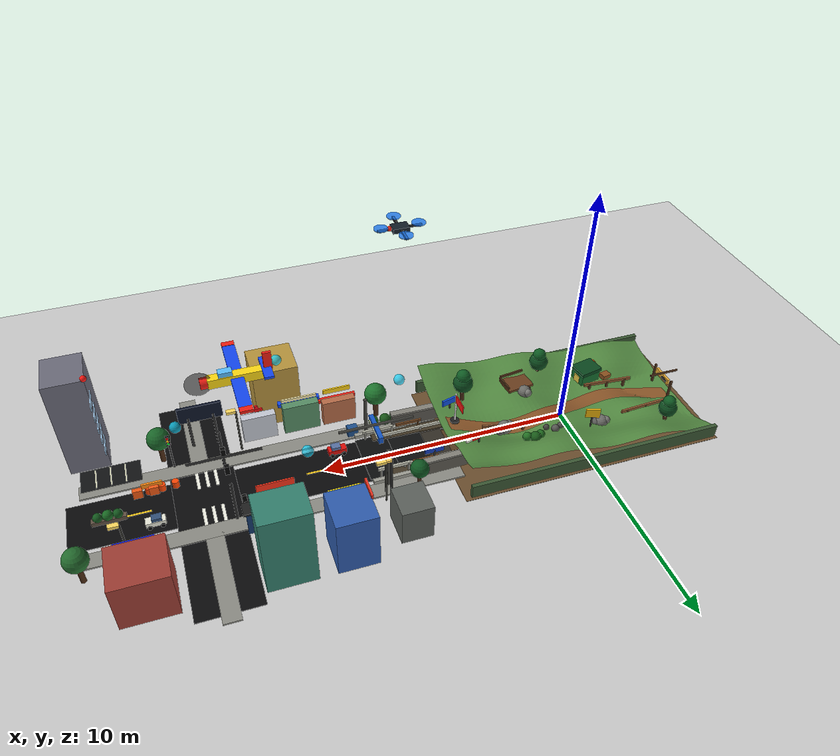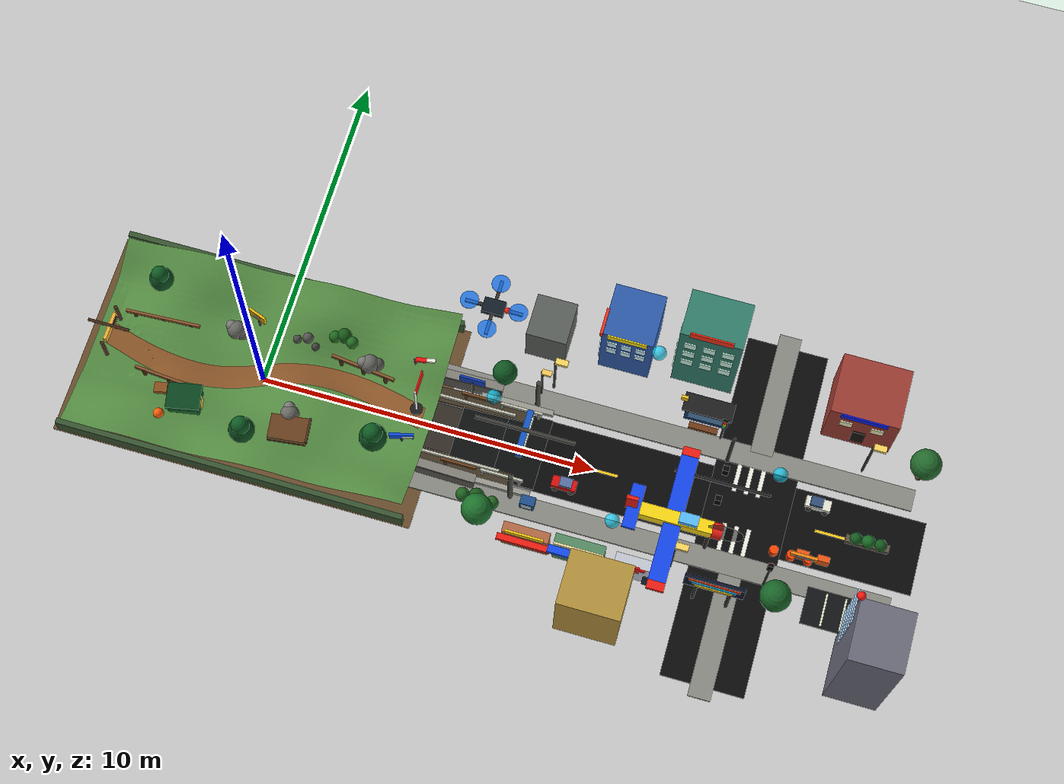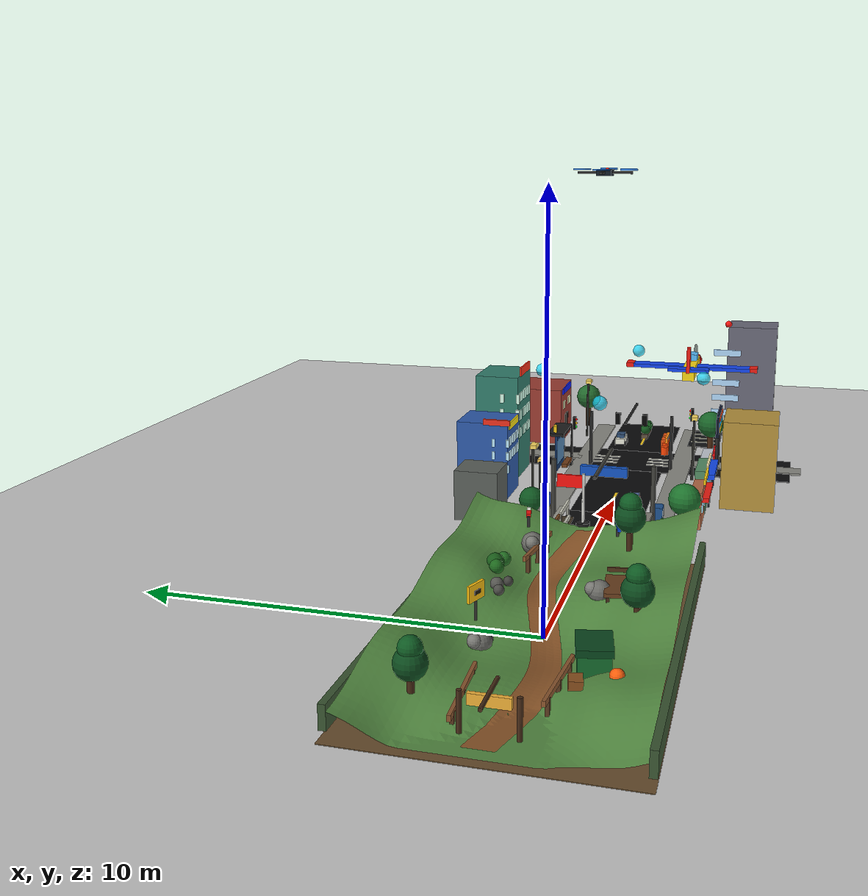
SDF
<?xml version="1.0" ?>
<sdf version="1.6">
  <world name="mountain_city_air_demo">
    <!-- Keep the original conservative physics so the mountain car remains stable. -->
    <physics name="default_physics" type="ode">
      <max_step_size>0.001</max_step_size>
      <real_time_factor>1.0</real_time_factor>
      <real_time_update_rate>1000</real_time_update_rate>
      <ode>
        <solver>
          <type>quick</type>
          <iters>80</iters>
          <sor>1.0</sor>
        </solver>
        <constraints>
          <cfm>0.0</cfm>
          <erp>0.2</erp>
          <contact_max_correcting_vel>1.0</contact_max_correcting_vel>
          <contact_surface_layer>0.001</contact_surface_layer>
        </constraints>
      </ode>
    </physics>

    <scene>
      <ambient>0.48 0.50 0.52 1</ambient>
      <background>0.68 0.82 0.96 1</background>
      <shadows>true</shadows>
    </scene>

    <include>
      <uri>model://sun</uri>
    </include>

    <include>
      <uri>model://ground_plane</uri>
    </include>

    <!-- Original mountain area. -->
    <include>
      <uri>model://mountain_terrain</uri>
      <pose>0 0 0 0 0 0</pose>
    </include>

    <include>
      <name>rock_obstacle_left</name>
      <uri>model://rock_obstacle</uri>
      <pose>-1.2 1.15 0.18 0 0 0.35</pose>
    </include>

    <include>
      <name>rock_obstacle_right</name>
      <uri>model://rock_obstacle</uri>
      <pose>1.2 -1.05 0.58 0 0 -0.55</pose>
    </include>

    <include>
      <name>rock_obstacle_top</name>
      <uri>model://rock_obstacle</uri>
      <pose>3.0 0.95 0.92 0 0 0.85</pose>
    </include>

    <include>
      <uri>model://checkpoint_flag</uri>
      <pose>4.7 0.0 1.05 0 0 0</pose>
    </include>

    <!-- Decorative mountain layer: guard rails, signs, lookout platform, camp and vegetation. -->
    <include>
      <name>mountain_showcase_details</name>
      <uri>model://mountain_showcase_details</uri>
      <pose>0 0 0 0 0 0</pose>
    </include>

    <!-- Blended transition from mountain trail to city street. -->
    <include>
      <name>mountain_city_transition</name>
      <uri>model://mountain_city_transition</uri>
      <pose>0 0 0 0 0 0</pose>
    </include>

    <!-- New city block: roads, buildings, sidewalks, lights, trees and signs. -->
    <include>
      <name>simple_city</name>
      <uri>model://simple_city</uri>
      <pose>0 0 0 0 0 0</pose>
    </include>

    <!-- Camera-facing city details: storefronts, billboard, gantry, parking and flight markers. -->
    <include>
      <name>showcase_city_details</name>
      <uri>model://showcase_city_details</uri>
      <pose>0 0 0 0 0 0</pose>
    </include>

    <!-- Lightweight UAV kept as a secondary aerial object. -->
    <include>
      <name>city_patrol_drone</name>
      <uri>model://simple_drone</uri>
      <pose>7.0 0.0 10.0 0 0 0</pose>
    </include>

    <!-- Larger fixed-wing aircraft for an obvious answer-defense visual. -->
    <include>
      <name>patrol_airplane</name>
      <uri>model://simple_airplane</uri>
      <pose>12.5 -2.0 3.8 0 0 0</pose>
    </include>

    <!-- Camera sees the mountain, transition road, city details and the low-aircraft path. -->
    <gui fullscreen="0">
      <camera name="user_camera">
        <pose>7.2 -17.5 8.4 0 0.44 0.44</pose>
        <view_controller>orbit</view_controller>
      </camera>
    </gui>
  </world>
</sdf>

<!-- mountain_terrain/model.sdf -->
<sdf version="1.6">
  <model name="mountain_terrain">
    <static>true</static>

    <!--
      山地主体使用程序化网格 mesh，而不是少量 box。
      mesh 中包含主坡度、两侧山脊、中央蛇形车道和小幅起伏，展示效果更接近山地。
    -->
    <link name="terrain_mesh">
      <pose>0 0 0 0 0 0</pose>
      <collision name="collision">
        <geometry>
          <mesh>
            <uri>model://mountain_terrain/meshes/mountain_terrain.dae</uri>
          </mesh>
        </geometry>
        <surface>
          <friction>
            <ode>
              <mu>2.0</mu>
              <mu2>2.0</mu2>
            </ode>
          </friction>
          <contact>
            <ode>
              <kp>100000</kp>
              <kd>1.0</kd>
            </ode>
          </contact>
        </surface>
      </collision>
      <visual name="visual">
        <geometry>
          <mesh>
            <uri>model://mountain_terrain/meshes/mountain_terrain.dae</uri>
          </mesh>
        </geometry>
        <material>
          <ambient>0.23 0.38 0.20 1</ambient>
          <diffuse>0.33 0.55 0.26 1</diffuse>
          <specular>0.04 0.04 0.03 1</specular>
        </material>
      </visual>
    </link>

    <!-- 贴合 mesh 高度的蛇形土路，只作为视觉层，帮助展示山地路线。 -->
    <link name="trail_visual">
      <pose>0 0 0 0 0 0</pose>
      <visual name="visual">
        <geometry>
          <mesh>
            <uri>model://mountain_terrain/meshes/mountain_trail.dae</uri>
          </mesh>
        </geometry>
        <material>
          <ambient>0.36 0.22 0.10 1</ambient>
          <diffuse>0.55 0.34 0.16 1</diffuse>
        </material>
      </visual>
    </link>

    <!-- 山地外圈土色底座，帮助从 Gazebo 网格背景中区分实验场地范围。 -->
    <link name="terrain_base">
      <pose>0 0 -0.035 0 0 0</pose>
      <collision name="collision">
        <geometry>
          <box>
            <size>10.8 6.3 0.05</size>
          </box>
        </geometry>
      </collision>
      <visual name="visual">
        <geometry>
          <box>
            <size>10.8 6.3 0.05</size>
          </box>
        </geometry>
        <material>
          <ambient>0.28 0.20 0.12 1</ambient>
          <diffuse>0.42 0.31 0.18 1</diffuse>
        </material>
      </visual>
    </link>

    <!-- 两侧低矮护栏用于强调山路边界，也避免小车演示时跑出场景。 -->
    <link name="left_boundary">
      <pose>0 3.08 0.42 0 0 0</pose>
      <collision name="collision">
        <geometry>
          <box>
            <size>10.4 0.16 0.55</size>
          </box>
        </geometry>
      </collision>
      <visual name="visual">
        <geometry>
          <box>
            <size>10.4 0.16 0.55</size>
          </box>
        </geometry>
        <material>
          <ambient>0.18 0.25 0.15 1</ambient>
          <diffuse>0.23 0.34 0.20 1</diffuse>
        </material>
      </visual>
    </link>

    <link name="right_boundary">
      <pose>0 -3.08 0.42 0 0 0</pose>
      <collision name="collision">
        <geometry>
          <box>
            <size>10.4 0.16 0.55</size>
          </box>
        </geometry>
      </collision>
      <visual name="visual">
        <geometry>
          <box>
            <size>10.4 0.16 0.55</size>
          </box>
        </geometry>
        <material>
          <ambient>0.18 0.25 0.15 1</ambient>
          <diffuse>0.23 0.34 0.20 1</diffuse>
        </material>
      </visual>
    </link>
  </model>
</sdf>

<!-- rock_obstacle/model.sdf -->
<sdf version="1.6">
  <model name="rock_obstacle">
    <static>true</static>

    <!-- 由多个球体拼成不规则岩石，避免依赖外部 mesh。 -->
    <link name="rock_cluster">
      <collision name="main_collision">
        <pose>0 0 0.16 0 0 0</pose>
        <geometry>
          <sphere>
            <radius>0.28</radius>
          </sphere>
        </geometry>
      </collision>
      <visual name="main_visual">
        <pose>0 0 0.16 0 0 0</pose>
        <geometry>
          <sphere>
            <radius>0.28</radius>
          </sphere>
        </geometry>
        <material>
          <ambient>0.26 0.26 0.25 1</ambient>
          <diffuse>0.42 0.42 0.40 1</diffuse>
        </material>
      </visual>

      <collision name="side_collision">
        <pose>0.18 -0.12 0.12 0 0 0</pose>
        <geometry>
          <sphere>
            <radius>0.20</radius>
          </sphere>
        </geometry>
      </collision>
      <visual name="side_visual">
        <pose>0.18 -0.12 0.12 0 0 0</pose>
        <geometry>
          <sphere>
            <radius>0.20</radius>
          </sphere>
        </geometry>
        <material>
          <ambient>0.22 0.22 0.22 1</ambient>
          <diffuse>0.36 0.36 0.35 1</diffuse>
        </material>
      </visual>

      <collision name="cap_collision">
        <pose>-0.14 0.12 0.24 0 0 0</pose>
        <geometry>
          <sphere>
            <radius>0.17</radius>
          </sphere>
        </geometry>
      </collision>
      <visual name="cap_visual">
        <pose>-0.14 0.12 0.24 0 0 0</pose>
        <geometry>
          <sphere>
            <radius>0.17</radius>
          </sphere>
        </geometry>
        <material>
          <ambient>0.30 0.30 0.29 1</ambient>
          <diffuse>0.48 0.48 0.46 1</diffuse>
        </material>
      </visual>
    </link>
  </model>
</sdf>

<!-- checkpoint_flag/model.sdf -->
<sdf version="1.6">
  <model name="checkpoint_flag">
    <static>true</static>

    <link name="flag_link">
      <!-- 旗杆底座，提高视觉稳定感。 -->
      <collision name="base_collision">
        <pose>0 0 0.04 0 0 0</pose>
        <geometry>
          <cylinder>
            <radius>0.18</radius>
            <length>0.08</length>
          </cylinder>
        </geometry>
      </collision>
      <visual name="base_visual">
        <pose>0 0 0.04 0 0 0</pose>
        <geometry>
          <cylinder>
            <radius>0.18</radius>
            <length>0.08</length>
          </cylinder>
        </geometry>
        <material>
          <ambient>0.08 0.08 0.08 1</ambient>
          <diffuse>0.12 0.12 0.12 1</diffuse>
        </material>
      </visual>

      <collision name="pole_collision">
        <pose>0 0 0.72 0 0 0</pose>
        <geometry>
          <cylinder>
            <radius>0.035</radius>
            <length>1.36</length>
          </cylinder>
        </geometry>
      </collision>
      <visual name="pole_visual">
        <pose>0 0 0.72 0 0 0</pose>
        <geometry>
          <cylinder>
            <radius>0.035</radius>
            <length>1.36</length>
          </cylinder>
        </geometry>
        <material>
          <ambient>0.78 0.78 0.78 1</ambient>
          <diffuse>0.90 0.90 0.88 1</diffuse>
        </material>
      </visual>

      <!-- 红色旗面用于标识终点检查点。 -->
      <collision name="flag_collision">
        <pose>0 0.35 1.18 0 0 0</pose>
        <geometry>
          <box>
            <size>0.04 0.70 0.34</size>
          </box>
        </geometry>
      </collision>
      <visual name="flag_visual">
        <pose>0 0.35 1.18 0 0 0</pose>
        <geometry>
          <box>
            <size>0.04 0.70 0.34</size>
          </box>
        </geometry>
        <material>
          <ambient>0.85 0.06 0.05 1</ambient>
          <diffuse>1.00 0.08 0.06 1</diffuse>
        </material>
      </visual>
    </link>
  </model>
</sdf>

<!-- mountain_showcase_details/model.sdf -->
<sdf version="1.6">
  <model name="mountain_showcase_details">
    <static>true</static>

    <!-- Mountain-road guard rails near the start and the city connector. -->
    <link name="trail_guard_rail_start_north">
      <pose>-3.4 0.88 0.36 0 0 0.05</pose>
      <visual name="rail"><geometry><box><size>2.25 0.08 0.13</size></box></geometry><material><ambient>0.55 0.34 0.18 1</ambient><diffuse>0.55 0.34 0.18 1</diffuse></material></visual>
      <visual name="post_1"><pose>-0.85 0 -0.22 0 0 0</pose><geometry><box><size>0.09 0.09 0.44</size></box></geometry><material><ambient>0.35 0.22 0.12 1</ambient><diffuse>0.35 0.22 0.12 1</diffuse></material></visual>
      <visual name="post_2"><pose>0 0 -0.22 0 0 0</pose><geometry><box><size>0.09 0.09 0.44</size></box></geometry><material><ambient>0.35 0.22 0.12 1</ambient><diffuse>0.35 0.22 0.12 1</diffuse></material></visual>
      <visual name="post_3"><pose>0.85 0 -0.22 0 0 0</pose><geometry><box><size>0.09 0.09 0.44</size></box></geometry><material><ambient>0.35 0.22 0.12 1</ambient><diffuse>0.35 0.22 0.12 1</diffuse></material></visual>
    </link>

    <link name="trail_guard_rail_start_south">
      <pose>-2.6 -0.88 0.42 0 0 -0.08</pose>
      <visual name="rail"><geometry><box><size>2.10 0.08 0.13</size></box></geometry><material><ambient>0.55 0.34 0.18 1</ambient><diffuse>0.55 0.34 0.18 1</diffuse></material></visual>
      <visual name="post_1"><pose>-0.78 0 -0.23 0 0 0</pose><geometry><box><size>0.09 0.09 0.46</size></box></geometry><material><ambient>0.35 0.22 0.12 1</ambient><diffuse>0.35 0.22 0.12 1</diffuse></material></visual>
      <visual name="post_2"><pose>0 0 -0.23 0 0 0</pose><geometry><box><size>0.09 0.09 0.46</size></box></geometry><material><ambient>0.35 0.22 0.12 1</ambient><diffuse>0.35 0.22 0.12 1</diffuse></material></visual>
      <visual name="post_3"><pose>0.78 0 -0.23 0 0 0</pose><geometry><box><size>0.09 0.09 0.46</size></box></geometry><material><ambient>0.35 0.22 0.12 1</ambient><diffuse>0.35 0.22 0.12 1</diffuse></material></visual>
    </link>

    <link name="trail_guard_rail_top">
      <pose>2.85 0.78 1.08 0 0 -0.12</pose>
      <visual name="rail"><geometry><box><size>1.95 0.08 0.13</size></box></geometry><material><ambient>0.55 0.34 0.18 1</ambient><diffuse>0.55 0.34 0.18 1</diffuse></material></visual>
      <visual name="post_1"><pose>-0.70 0 -0.22 0 0 0</pose><geometry><box><size>0.09 0.09 0.44</size></box></geometry><material><ambient>0.35 0.22 0.12 1</ambient><diffuse>0.35 0.22 0.12 1</diffuse></material></visual>
      <visual name="post_2"><pose>0 0 -0.22 0 0 0</pose><geometry><box><size>0.09 0.09 0.44</size></box></geometry><material><ambient>0.35 0.22 0.12 1</ambient><diffuse>0.35 0.22 0.12 1</diffuse></material></visual>
      <visual name="post_3"><pose>0.70 0 -0.22 0 0 0</pose><geometry><box><size>0.09 0.09 0.44</size></box></geometry><material><ambient>0.35 0.22 0.12 1</ambient><diffuse>0.35 0.22 0.12 1</diffuse></material></visual>
    </link>

    <!-- Trailhead gate and mountain direction signs. -->
    <link name="trailhead_gate">
      <pose>-4.65 0 0.18 0 0 0</pose>
      <visual name="left_post"><pose>0 0.58 0.44 0 0 0</pose><geometry><cylinder><radius>0.055</radius><length>0.88</length></cylinder></geometry><material><ambient>0.28 0.17 0.09 1</ambient><diffuse>0.28 0.17 0.09 1</diffuse></material></visual>
      <visual name="right_post"><pose>0 -0.58 0.44 0 0 0</pose><geometry><cylinder><radius>0.055</radius><length>0.88</length></cylinder></geometry><material><ambient>0.28 0.17 0.09 1</ambient><diffuse>0.28 0.17 0.09 1</diffuse></material></visual>
      <visual name="top_beam"><pose>0 0 0.88 0 1.5708 0</pose><geometry><cylinder><radius>0.045</radius><length>1.25</length></cylinder></geometry><material><ambient>0.28 0.17 0.09 1</ambient><diffuse>0.28 0.17 0.09 1</diffuse></material></visual>
      <visual name="sign_board"><pose>0.02 0 0.72 0 0 0</pose><geometry><box><size>0.10 0.86 0.24</size></box></geometry><material><ambient>0.95 0.70 0.22 1</ambient><diffuse>0.95 0.70 0.22 1</diffuse></material></visual>
      <visual name="arrow"><pose>0.08 0.20 0.72 0 0 0</pose><geometry><box><size>0.08 0.34 0.08</size></box></geometry><material><ambient>0.08 0.08 0.08 1</ambient><diffuse>0.08 0.08 0.08 1</diffuse></material></visual>
    </link>

    <link name="warning_sign_rocks">
      <pose>-0.55 1.42 0.52 0 0 -0.35</pose>
      <visual name="pole"><pose>0 0 0.28 0 0 0</pose><geometry><cylinder><radius>0.035</radius><length>0.56</length></cylinder></geometry><material><ambient>0.20 0.20 0.18 1</ambient><diffuse>0.20 0.20 0.18 1</diffuse></material></visual>
      <visual name="triangle_base"><pose>0 0 0.68 0 0 0</pose><geometry><box><size>0.56 0.07 0.40</size></box></geometry><material><ambient>1.0 0.76 0.06 1</ambient><diffuse>1.0 0.76 0.06 1</diffuse></material></visual>
      <visual name="symbol"><pose>0 -0.04 0.68 0 0 0</pose><geometry><box><size>0.20 0.04 0.10</size></box></geometry><material><ambient>0.10 0.08 0.04 1</ambient><diffuse>0.10 0.08 0.04 1</diffuse></material></visual>
    </link>

    <link name="city_direction_sign">
      <pose>4.55 -0.95 1.08 0 0 0.25</pose>
      <visual name="pole"><pose>0 0 -0.30 0 0 0</pose><geometry><cylinder><radius>0.04</radius><length>0.86</length></cylinder></geometry><material><ambient>0.20 0.20 0.20 1</ambient><diffuse>0.20 0.20 0.20 1</diffuse></material></visual>
      <visual name="board"><pose>0 0 0.18 0 0 0</pose><geometry><box><size>0.70 0.08 0.26</size></box></geometry><material><ambient>0.05 0.30 0.85 1</ambient><diffuse>0.05 0.30 0.85 1</diffuse></material></visual>
      <visual name="arrow"><pose>0.18 -0.05 0.18 0 0 0</pose><geometry><box><size>0.32 0.04 0.08</size></box></geometry><material><ambient>0.96 0.96 0.88 1</ambient><diffuse>0.96 0.96 0.88 1</diffuse></material></visual>
    </link>

    <!-- Scenic lookout and small camp make the mountain feel inhabited. -->
    <link name="lookout_platform">
      <pose>1.35 -1.55 0.86 0 0 0.12</pose>
      <visual name="deck"><geometry><box><size>1.15 0.82 0.10</size></box></geometry><material><ambient>0.42 0.25 0.12 1</ambient><diffuse>0.42 0.25 0.12 1</diffuse></material></visual>
      <visual name="post_1"><pose>-0.45 -0.32 -0.28 0 0 0</pose><geometry><box><size>0.08 0.08 0.56</size></box></geometry><material><ambient>0.26 0.16 0.09 1</ambient><diffuse>0.26 0.16 0.09 1</diffuse></material></visual>
      <visual name="post_2"><pose>0.45 -0.32 -0.28 0 0 0</pose><geometry><box><size>0.08 0.08 0.56</size></box></geometry><material><ambient>0.26 0.16 0.09 1</ambient><diffuse>0.26 0.16 0.09 1</diffuse></material></visual>
      <visual name="post_3"><pose>-0.45 0.32 -0.28 0 0 0</pose><geometry><box><size>0.08 0.08 0.56</size></box></geometry><material><ambient>0.26 0.16 0.09 1</ambient><diffuse>0.26 0.16 0.09 1</diffuse></material></visual>
      <visual name="post_4"><pose>0.45 0.32 -0.28 0 0 0</pose><geometry><box><size>0.08 0.08 0.56</size></box></geometry><material><ambient>0.26 0.16 0.09 1</ambient><diffuse>0.26 0.16 0.09 1</diffuse></material></visual>
      <visual name="front_rail"><pose>0 -0.42 0.18 0 0 0</pose><geometry><box><size>1.05 0.06 0.10</size></box></geometry><material><ambient>0.32 0.20 0.10 1</ambient><diffuse>0.32 0.20 0.10 1</diffuse></material></visual>
      <visual name="side_rail"><pose>0.58 0 0.18 0 0 0</pose><geometry><box><size>0.06 0.76 0.10</size></box></geometry><material><ambient>0.32 0.20 0.10 1</ambient><diffuse>0.32 0.20 0.10 1</diffuse></material></visual>
    </link>

    <link name="mountain_camp">
      <pose>-1.85 -1.45 0.36 0 0 0.20</pose>
      <visual name="tent_body"><pose>0 0 0.24 0 0 0</pose><geometry><box><size>0.90 0.70 0.48</size></box></geometry><material><ambient>0.08 0.42 0.18 1</ambient><diffuse>0.08 0.42 0.18 1</diffuse></material></visual>
      <visual name="tent_roof"><pose>0 0 0.55 0 0 0</pose><geometry><box><size>0.98 0.78 0.16</size></box></geometry><material><ambient>0.04 0.28 0.12 1</ambient><diffuse>0.04 0.28 0.12 1</diffuse></material></visual>
      <visual name="door"><pose>0.46 0 0.18 0 0 0</pose><geometry><box><size>0.04 0.30 0.34</size></box></geometry><material><ambient>0.95 0.82 0.30 1</ambient><diffuse>0.95 0.82 0.30 1</diffuse></material></visual>
      <visual name="supply_box"><pose>-0.78 0.38 0.10 0 0 0</pose><geometry><box><size>0.38 0.30 0.20</size></box></geometry><material><ambient>0.55 0.32 0.12 1</ambient><diffuse>0.55 0.32 0.12 1</diffuse></material></visual>
      <visual name="campfire_base"><pose>-0.72 -0.44 0.06 0 0 0</pose><geometry><cylinder><radius>0.22</radius><length>0.08</length></cylinder></geometry><material><ambient>0.18 0.12 0.08 1</ambient><diffuse>0.18 0.12 0.08 1</diffuse></material></visual>
      <visual name="campfire_flame"><pose>-0.72 -0.44 0.22 0 0 0</pose><geometry><sphere><radius>0.16</radius></sphere></geometry><material><ambient>1.0 0.38 0.05 1</ambient><diffuse>1.0 0.38 0.05 1</diffuse></material></visual>
    </link>

    <!-- Vegetation and small stones around the mountain road. -->
    <link name="pine_tree_1">
      <pose>-3.7 1.85 0.18 0 0 0</pose>
      <visual name="trunk"><pose>0 0 0.32 0 0 0</pose><geometry><cylinder><radius>0.08</radius><length>0.64</length></cylinder></geometry><material><ambient>0.28 0.16 0.08 1</ambient><diffuse>0.28 0.16 0.08 1</diffuse></material></visual>
      <visual name="crown_low"><pose>0 0 0.78 0 0 0</pose><geometry><sphere><radius>0.36</radius></sphere></geometry><material><ambient>0.05 0.30 0.12 1</ambient><diffuse>0.05 0.30 0.12 1</diffuse></material></visual>
      <visual name="crown_top"><pose>0 0 1.10 0 0 0</pose><geometry><sphere><radius>0.26</radius></sphere></geometry><material><ambient>0.06 0.36 0.14 1</ambient><diffuse>0.06 0.36 0.14 1</diffuse></material></visual>
    </link>

    <link name="pine_tree_2">
      <pose>0.15 -2.05 0.48 0 0 0</pose>
      <visual name="trunk"><pose>0 0 0.34 0 0 0</pose><geometry><cylinder><radius>0.08</radius><length>0.68</length></cylinder></geometry><material><ambient>0.28 0.16 0.08 1</ambient><diffuse>0.28 0.16 0.08 1</diffuse></material></visual>
      <visual name="crown_low"><pose>0 0 0.83 0 0 0</pose><geometry><sphere><radius>0.38</radius></sphere></geometry><material><ambient>0.05 0.30 0.12 1</ambient><diffuse>0.05 0.30 0.12 1</diffuse></material></visual>
      <visual name="crown_top"><pose>0 0 1.18 0 0 0</pose><geometry><sphere><radius>0.27</radius></sphere></geometry><material><ambient>0.06 0.36 0.14 1</ambient><diffuse>0.06 0.36 0.14 1</diffuse></material></visual>
    </link>

    <link name="pine_tree_3">
      <pose>3.85 -1.35 0.78 0 0 0</pose>
      <visual name="trunk"><pose>0 0 0.36 0 0 0</pose><geometry><cylinder><radius>0.08</radius><length>0.72</length></cylinder></geometry><material><ambient>0.28 0.16 0.08 1</ambient><diffuse>0.28 0.16 0.08 1</diffuse></material></visual>
      <visual name="crown_low"><pose>0 0 0.90 0 0 0</pose><geometry><sphere><radius>0.40</radius></sphere></geometry><material><ambient>0.05 0.30 0.12 1</ambient><diffuse>0.05 0.30 0.12 1</diffuse></material></visual>
      <visual name="crown_top"><pose>0 0 1.24 0 0 0</pose><geometry><sphere><radius>0.29</radius></sphere></geometry><material><ambient>0.06 0.36 0.14 1</ambient><diffuse>0.06 0.36 0.14 1</diffuse></material></visual>
    </link>

    <link name="shrub_cluster">
      <pose>2.0 1.55 0.78 0 0 0</pose>
      <visual name="bush_1"><pose>-0.25 0 0.10 0 0 0</pose><geometry><sphere><radius>0.18</radius></sphere></geometry><material><ambient>0.12 0.42 0.12 1</ambient><diffuse>0.12 0.42 0.12 1</diffuse></material></visual>
      <visual name="bush_2"><pose>0.00 0.10 0.12 0 0 0</pose><geometry><sphere><radius>0.22</radius></sphere></geometry><material><ambient>0.10 0.36 0.10 1</ambient><diffuse>0.10 0.36 0.10 1</diffuse></material></visual>
      <visual name="bush_3"><pose>0.28 -0.04 0.10 0 0 0</pose><geometry><sphere><radius>0.18</radius></sphere></geometry><material><ambient>0.14 0.44 0.14 1</ambient><diffuse>0.14 0.44 0.14 1</diffuse></material></visual>
    </link>

    <link name="loose_rocks">
      <pose>0.95 1.22 0.68 0 0 0</pose>
      <visual name="stone_1"><pose>-0.26 0 0.07 0 0 0</pose><geometry><sphere><radius>0.13</radius></sphere></geometry><material><ambient>0.30 0.30 0.28 1</ambient><diffuse>0.30 0.30 0.28 1</diffuse></material></visual>
      <visual name="stone_2"><pose>0.03 0.12 0.09 0 0 0</pose><geometry><sphere><radius>0.16</radius></sphere></geometry><material><ambient>0.34 0.34 0.32 1</ambient><diffuse>0.34 0.34 0.32 1</diffuse></material></visual>
      <visual name="stone_3"><pose>0.32 -0.08 0.06 0 0 0</pose><geometry><sphere><radius>0.12</radius></sphere></geometry><material><ambient>0.26 0.26 0.24 1</ambient><diffuse>0.26 0.26 0.24 1</diffuse></material></visual>
    </link>

    <!-- A small wind sock helps show wind/air theme next to the mountain route. -->
    <link name="mountain_windsock">
      <pose>4.25 1.35 1.15 0 0 0.2</pose>
      <visual name="pole"><pose>0 0 -0.35 0 0 0</pose><geometry><cylinder><radius>0.035</radius><length>1.05</length></cylinder></geometry><material><ambient>0.20 0.20 0.20 1</ambient><diffuse>0.20 0.20 0.20 1</diffuse></material></visual>
      <visual name="sock_red"><pose>0.18 0 0.18 0 0 0</pose><geometry><box><size>0.32 0.12 0.10</size></box></geometry><material><ambient>0.95 0.08 0.05 1</ambient><diffuse>0.95 0.08 0.05 1</diffuse></material></visual>
      <visual name="sock_white"><pose>0.46 0 0.18 0 0 0</pose><geometry><box><size>0.26 0.10 0.08</size></box></geometry><material><ambient>0.95 0.95 0.90 1</ambient><diffuse>0.95 0.95 0.90 1</diffuse></material></visual>
    </link>
  </model>
</sdf>

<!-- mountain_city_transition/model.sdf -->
<sdf version="1.6">
  <model name="mountain_city_transition">
    <static>true</static>

    <!-- Layered road surface: dirt trail fades into a wider asphalt city entry. -->
    <link name="dirt_exit_patch">
      <pose>4.85 0 0.075 0 0 0</pose>
      <collision name="collision"><geometry><box><size>1.80 1.22 0.035</size></box></geometry></collision>
      <visual name="visual">
        <geometry><box><size>1.80 1.22 0.035</size></box></geometry>
        <material><ambient>0.34 0.24 0.13 1</ambient><diffuse>0.34 0.24 0.13 1</diffuse></material>
      </visual>
    </link>

    <link name="mixed_gravel_patch">
      <pose>5.85 0 0.085 0 0 0</pose>
      <collision name="collision"><geometry><box><size>1.65 1.42 0.035</size></box></geometry></collision>
      <visual name="visual">
        <geometry><box><size>1.65 1.42 0.035</size></box></geometry>
        <material><ambient>0.20 0.18 0.15 1</ambient><diffuse>0.20 0.18 0.15 1</diffuse></material>
      </visual>
    </link>

    <link name="asphalt_entry_patch">
      <pose>6.95 0 0.095 0 0 0</pose>
      <collision name="collision"><geometry><box><size>2.15 1.72 0.038</size></box></geometry></collision>
      <visual name="visual">
        <geometry><box><size>2.15 1.72 0.038</size></box></geometry>
        <material><ambient>0.055 0.058 0.060 1</ambient><diffuse>0.055 0.058 0.060 1</diffuse></material>
      </visual>
    </link>

    <link name="city_entry_flare">
      <pose>7.85 0 0.105 0 0 0</pose>
      <collision name="collision"><geometry><box><size>1.25 2.18 0.035</size></box></geometry></collision>
      <visual name="visual">
        <geometry><box><size>1.25 2.18 0.035</size></box></geometry>
        <material><ambient>0.045 0.048 0.050 1</ambient><diffuse>0.045 0.048 0.050 1</diffuse></material>
      </visual>
    </link>

    <!-- Shoulders hide the hard seam between the mountain mesh and the city road. -->
    <link name="north_earth_shoulder">
      <pose>6.00 1.00 0.11 0 0 0.03</pose>
      <visual name="visual">
        <geometry><box><size>3.60 0.46 0.07</size></box></geometry>
        <material><ambient>0.26 0.22 0.15 1</ambient><diffuse>0.26 0.22 0.15 1</diffuse></material>
      </visual>
    </link>

    <link name="south_earth_shoulder">
      <pose>6.00 -1.00 0.11 0 0 -0.03</pose>
      <visual name="visual">
        <geometry><box><size>3.60 0.46 0.07</size></box></geometry>
        <material><ambient>0.26 0.22 0.15 1</ambient><diffuse>0.26 0.22 0.15 1</diffuse></material>
      </visual>
    </link>

    <link name="north_city_curb">
      <pose>7.35 1.28 0.16 0 0 0</pose>
      <collision name="collision"><geometry><box><size>2.15 0.16 0.16</size></box></geometry></collision>
      <visual name="visual">
        <geometry><box><size>2.15 0.16 0.16</size></box></geometry>
        <material><ambient>0.62 0.62 0.58 1</ambient><diffuse>0.62 0.62 0.58 1</diffuse></material>
      </visual>
    </link>

    <link name="south_city_curb">
      <pose>7.35 -1.28 0.16 0 0 0</pose>
      <collision name="collision"><geometry><box><size>2.15 0.16 0.16</size></box></geometry></collision>
      <visual name="visual">
        <geometry><box><size>2.15 0.16 0.16</size></box></geometry>
        <material><ambient>0.62 0.62 0.58 1</ambient><diffuse>0.62 0.62 0.58 1</diffuse></material>
      </visual>
    </link>

    <!-- Retaining walls and mixed guard rails bridge the visual language of mountain and city. -->
    <link name="north_retaining_wall">
      <pose>5.70 1.42 0.42 0 0 0.02</pose>
      <collision name="collision"><geometry><box><size>2.25 0.20 0.58</size></box></geometry></collision>
      <visual name="wall">
        <geometry><box><size>2.25 0.20 0.58</size></box></geometry>
        <material><ambient>0.36 0.35 0.32 1</ambient><diffuse>0.36 0.35 0.32 1</diffuse></material>
      </visual>
      <visual name="cap"><pose>0 0 0.34 0 0 0</pose><geometry><box><size>2.35 0.26 0.08</size></box></geometry><material><ambient>0.52 0.51 0.48 1</ambient><diffuse>0.52 0.51 0.48 1</diffuse></material></visual>
    </link>

    <link name="south_retaining_wall">
      <pose>5.70 -1.42 0.42 0 0 -0.02</pose>
      <collision name="collision"><geometry><box><size>2.25 0.20 0.58</size></box></geometry></collision>
      <visual name="wall">
        <geometry><box><size>2.25 0.20 0.58</size></box></geometry>
        <material><ambient>0.36 0.35 0.32 1</ambient><diffuse>0.36 0.35 0.32 1</diffuse></material>
      </visual>
      <visual name="cap"><pose>0 0 0.34 0 0 0</pose><geometry><box><size>2.35 0.26 0.08</size></box></geometry><material><ambient>0.52 0.51 0.48 1</ambient><diffuse>0.52 0.51 0.48 1</diffuse></material></visual>
    </link>

    <link name="north_wood_to_metal_rail">
      <pose>6.95 1.05 0.50 0 0 0</pose>
      <visual name="wood_part"><pose>-0.70 0 0 0 0 0</pose><geometry><box><size>1.05 0.07 0.12</size></box></geometry><material><ambient>0.46 0.28 0.13 1</ambient><diffuse>0.46 0.28 0.13 1</diffuse></material></visual>
      <visual name="metal_part"><pose>0.58 0 0 0 0 0</pose><geometry><box><size>1.25 0.07 0.12</size></box></geometry><material><ambient>0.78 0.78 0.72 1</ambient><diffuse>0.78 0.78 0.72 1</diffuse></material></visual>
      <visual name="post_1"><pose>-1.10 0 -0.24 0 0 0</pose><geometry><box><size>0.07 0.07 0.48</size></box></geometry><material><ambient>0.38 0.24 0.12 1</ambient><diffuse>0.38 0.24 0.12 1</diffuse></material></visual>
      <visual name="post_2"><pose>0.00 0 -0.24 0 0 0</pose><geometry><box><size>0.07 0.07 0.48</size></box></geometry><material><ambient>0.58 0.58 0.54 1</ambient><diffuse>0.58 0.58 0.54 1</diffuse></material></visual>
      <visual name="post_3"><pose>1.10 0 -0.24 0 0 0</pose><geometry><box><size>0.07 0.07 0.48</size></box></geometry><material><ambient>0.58 0.58 0.54 1</ambient><diffuse>0.58 0.58 0.54 1</diffuse></material></visual>
    </link>

    <link name="south_wood_to_metal_rail">
      <pose>6.95 -1.05 0.50 0 0 0</pose>
      <visual name="wood_part"><pose>-0.70 0 0 0 0 0</pose><geometry><box><size>1.05 0.07 0.12</size></box></geometry><material><ambient>0.46 0.28 0.13 1</ambient><diffuse>0.46 0.28 0.13 1</diffuse></material></visual>
      <visual name="metal_part"><pose>0.58 0 0 0 0 0</pose><geometry><box><size>1.25 0.07 0.12</size></box></geometry><material><ambient>0.78 0.78 0.72 1</ambient><diffuse>0.78 0.78 0.72 1</diffuse></material></visual>
      <visual name="post_1"><pose>-1.10 0 -0.24 0 0 0</pose><geometry><box><size>0.07 0.07 0.48</size></box></geometry><material><ambient>0.38 0.24 0.12 1</ambient><diffuse>0.38 0.24 0.12 1</diffuse></material></visual>
      <visual name="post_2"><pose>0.00 0 -0.24 0 0 0</pose><geometry><box><size>0.07 0.07 0.48</size></box></geometry><material><ambient>0.58 0.58 0.54 1</ambient><diffuse>0.58 0.58 0.54 1</diffuse></material></visual>
      <visual name="post_3"><pose>1.10 0 -0.24 0 0 0</pose><geometry><box><size>0.07 0.07 0.48</size></box></geometry><material><ambient>0.58 0.58 0.54 1</ambient><diffuse>0.58 0.58 0.54 1</diffuse></material></visual>
    </link>

    <!-- Lane markings fade in gradually as the trail becomes city road. -->
    <link name="dashed_center_intro_1">
      <pose>5.70 0 0.145 0 0 0</pose>
      <visual name="visual"><geometry><box><size>0.42 0.06 0.018</size></box></geometry><material><ambient>0.95 0.78 0.12 1</ambient><diffuse>0.95 0.78 0.12 1</diffuse></material></visual>
    </link>

    <link name="dashed_center_intro_2">
      <pose>6.60 0 0.150 0 0 0</pose>
      <visual name="visual"><geometry><box><size>0.62 0.07 0.018</size></box></geometry><material><ambient>0.98 0.82 0.12 1</ambient><diffuse>0.98 0.82 0.12 1</diffuse></material></visual>
    </link>

    <link name="dashed_center_intro_3">
      <pose>7.55 0 0.155 0 0 0</pose>
      <visual name="visual"><geometry><box><size>0.78 0.08 0.018</size></box></geometry><material><ambient>1.00 0.86 0.12 1</ambient><diffuse>1.00 0.86 0.12 1</diffuse></material></visual>
    </link>

    <!-- Gateway element marks the mountain-city boundary without feeling like a hard cut. -->
    <link name="mountain_city_gateway">
      <pose>7.90 0 0 0 0 0</pose>
      <visual name="left_post"><pose>0 1.45 0.92 0 0 0</pose><geometry><cylinder><radius>0.07</radius><length>1.84</length></cylinder></geometry><material><ambient>0.26 0.26 0.24 1</ambient><diffuse>0.26 0.26 0.24 1</diffuse></material></visual>
      <visual name="right_post"><pose>0 -1.45 0.92 0 0 0</pose><geometry><cylinder><radius>0.07</radius><length>1.84</length></cylinder></geometry><material><ambient>0.26 0.26 0.24 1</ambient><diffuse>0.26 0.26 0.24 1</diffuse></material></visual>
      <visual name="top_beam"><pose>0 0 1.82 0 1.5708 0</pose><geometry><cylinder><radius>0.055</radius><length>2.92</length></cylinder></geometry><material><ambient>0.26 0.26 0.24 1</ambient><diffuse>0.26 0.26 0.24 1</diffuse></material></visual>
      <visual name="sign_board"><pose>0 -0.02 1.58 0 0 0</pose><geometry><box><size>0.18 1.35 0.28</size></box></geometry><material><ambient>0.08 0.34 0.78 1</ambient><diffuse>0.08 0.34 0.78 1</diffuse></material></visual>
      <visual name="sign_stripe"><pose>0.10 -0.02 1.58 0 0 0</pose><geometry><box><size>0.05 1.05 0.07</size></box></geometry><material><ambient>0.95 0.95 0.82 1</ambient><diffuse>0.95 0.95 0.82 1</diffuse></material></visual>
    </link>

    <!-- Mixed natural and urban roadside objects. -->
    <link name="transition_pine_and_lamp">
      <pose>7.35 1.85 0 0 0 0</pose>
      <visual name="pine_trunk"><pose>-0.55 0 0.36 0 0 0</pose><geometry><cylinder><radius>0.08</radius><length>0.72</length></cylinder></geometry><material><ambient>0.28 0.16 0.08 1</ambient><diffuse>0.28 0.16 0.08 1</diffuse></material></visual>
      <visual name="pine_crown"><pose>-0.55 0 0.92 0 0 0</pose><geometry><sphere><radius>0.36</radius></sphere></geometry><material><ambient>0.06 0.34 0.13 1</ambient><diffuse>0.06 0.34 0.13 1</diffuse></material></visual>
      <visual name="lamp_pole"><pose>0.55 0 0.86 0 0 0</pose><geometry><cylinder><radius>0.04</radius><length>1.72</length></cylinder></geometry><material><ambient>0.16 0.16 0.16 1</ambient><diffuse>0.16 0.16 0.16 1</diffuse></material></visual>
      <visual name="lamp_head"><pose>0.68 0 1.74 0 0 0</pose><geometry><box><size>0.28 0.16 0.10</size></box></geometry><material><ambient>1.0 0.82 0.36 1</ambient><diffuse>1.0 0.82 0.36 1</diffuse></material></visual>
    </link>

    <link name="transition_bushes_south">
      <pose>7.05 -1.82 0.14 0 0 0</pose>
      <visual name="bush_1"><pose>-0.45 0 0.12 0 0 0</pose><geometry><sphere><radius>0.20</radius></sphere></geometry><material><ambient>0.12 0.40 0.12 1</ambient><diffuse>0.12 0.40 0.12 1</diffuse></material></visual>
      <visual name="bush_2"><pose>-0.05 0.06 0.14 0 0 0</pose><geometry><sphere><radius>0.23</radius></sphere></geometry><material><ambient>0.10 0.34 0.10 1</ambient><diffuse>0.10 0.34 0.10 1</diffuse></material></visual>
      <visual name="bush_3"><pose>0.42 -0.02 0.12 0 0 0</pose><geometry><sphere><radius>0.20</radius></sphere></geometry><material><ambient>0.14 0.42 0.14 1</ambient><diffuse>0.14 0.42 0.14 1</diffuse></material></visual>
    </link>

    <link name="transition_service_box">
      <pose>8.45 -1.55 0.24 0 0 0</pose>
      <visual name="box"><geometry><box><size>0.42 0.28 0.48</size></box></geometry><material><ambient>0.12 0.32 0.56 1</ambient><diffuse>0.12 0.32 0.56 1</diffuse></material></visual>
      <visual name="panel"><pose>0 -0.145 0.04 0 0 0</pose><geometry><box><size>0.28 0.025 0.18</size></box></geometry><material><ambient>0.85 0.90 0.92 1</ambient><diffuse>0.85 0.90 0.92 1</diffuse></material></visual>
    </link>
  </model>
</sdf>

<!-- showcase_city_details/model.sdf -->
<sdf version="1.6">
  <model name="showcase_city_details">
    <static>true</static>

    <!-- South-facing storefront row: placed toward the default camera for immediate visual impact. -->
    <link name="storefront_cafe">
      <pose>8.7 -2.65 0.55 0 0 0</pose>
      <collision name="collision"><geometry><box><size>1.35 0.32 1.10</size></box></geometry></collision>
      <visual name="wall"><geometry><box><size>1.35 0.32 1.10</size></box></geometry><material><ambient>0.72 0.42 0.28 1</ambient><diffuse>0.72 0.42 0.28 1</diffuse></material></visual>
      <visual name="window_left"><pose>-0.36 -0.18 0.12 0 0 0</pose><geometry><box><size>0.32 0.04 0.42</size></box></geometry><material><ambient>0.70 0.92 1.0 1</ambient><diffuse>0.70 0.92 1.0 1</diffuse></material></visual>
      <visual name="window_right"><pose>0.36 -0.18 0.12 0 0 0</pose><geometry><box><size>0.32 0.04 0.42</size></box></geometry><material><ambient>0.70 0.92 1.0 1</ambient><diffuse>0.70 0.92 1.0 1</diffuse></material></visual>
      <visual name="awning"><pose>0 -0.28 0.38 0 0 0</pose><geometry><box><size>1.55 0.18 0.14</size></box></geometry><material><ambient>0.95 0.12 0.08 1</ambient><diffuse>0.95 0.12 0.08 1</diffuse></material></visual>
      <visual name="sign"><pose>0 -0.22 0.86 0 0 0</pose><geometry><box><size>1.10 0.06 0.20</size></box></geometry><material><ambient>1.0 0.82 0.08 1</ambient><diffuse>1.0 0.82 0.08 1</diffuse></material></visual>
    </link>

    <link name="storefront_market">
      <pose>10.25 -2.65 0.65 0 0 0</pose>
      <collision name="collision"><geometry><box><size>1.45 0.34 1.30</size></box></geometry></collision>
      <visual name="wall"><geometry><box><size>1.45 0.34 1.30</size></box></geometry><material><ambient>0.34 0.56 0.40 1</ambient><diffuse>0.34 0.56 0.40 1</diffuse></material></visual>
      <visual name="glass"><pose>0 -0.20 0.02 0 0 0</pose><geometry><box><size>1.05 0.04 0.62</size></box></geometry><material><ambient>0.56 0.86 1.0 1</ambient><diffuse>0.56 0.86 1.0 1</diffuse></material></visual>
      <visual name="door"><pose>0 -0.23 -0.36 0 0 0</pose><geometry><box><size>0.28 0.05 0.55</size></box></geometry><material><ambient>0.08 0.10 0.12 1</ambient><diffuse>0.08 0.10 0.12 1</diffuse></material></visual>
      <visual name="awning"><pose>0 -0.30 0.52 0 0 0</pose><geometry><box><size>1.68 0.22 0.16</size></box></geometry><material><ambient>0.08 0.30 0.95 1</ambient><diffuse>0.08 0.30 0.95 1</diffuse></material></visual>
      <visual name="roof_trim"><pose>0 -0.18 0.76 0 0 0</pose><geometry><box><size>1.42 0.06 0.14</size></box></geometry><material><ambient>0.98 0.92 0.68 1</ambient><diffuse>0.98 0.92 0.68 1</diffuse></material></visual>
    </link>

    <link name="storefront_clinic">
      <pose>11.95 -2.65 0.58 0 0 0</pose>
      <collision name="collision"><geometry><box><size>1.35 0.32 1.16</size></box></geometry></collision>
      <visual name="wall"><geometry><box><size>1.35 0.32 1.16</size></box></geometry><material><ambient>0.78 0.80 0.84 1</ambient><diffuse>0.78 0.80 0.84 1</diffuse></material></visual>
      <visual name="window"><pose>-0.26 -0.18 0.05 0 0 0</pose><geometry><box><size>0.38 0.04 0.44</size></box></geometry><material><ambient>0.64 0.90 1.0 1</ambient><diffuse>0.64 0.90 1.0 1</diffuse></material></visual>
      <visual name="door"><pose>0.36 -0.20 -0.28 0 0 0</pose><geometry><box><size>0.32 0.05 0.68</size></box></geometry><material><ambient>0.12 0.18 0.24 1</ambient><diffuse>0.12 0.18 0.24 1</diffuse></material></visual>
      <visual name="cross_h"><pose>0 -0.22 0.64 0 0 0</pose><geometry><box><size>0.46 0.05 0.12</size></box></geometry><material><ambient>0.95 0.08 0.08 1</ambient><diffuse>0.95 0.08 0.08 1</diffuse></material></visual>
      <visual name="cross_v"><pose>0 -0.23 0.64 0 0 0</pose><geometry><box><size>0.13 0.055 0.42</size></box></geometry><material><ambient>0.95 0.08 0.08 1</ambient><diffuse>0.95 0.08 0.08 1</diffuse></material></visual>
    </link>

    <!-- A large billboard and road gantry read well from a distance. -->
    <link name="billboard">
      <pose>14.1 -2.85 0 0 0 0</pose>
      <visual name="post_left"><pose>-0.48 0 0.78 0 0 0</pose><geometry><cylinder><radius>0.055</radius><length>1.56</length></cylinder></geometry><material><ambient>0.18 0.18 0.18 1</ambient><diffuse>0.18 0.18 0.18 1</diffuse></material></visual>
      <visual name="post_right"><pose>0.48 0 0.78 0 0 0</pose><geometry><cylinder><radius>0.055</radius><length>1.56</length></cylinder></geometry><material><ambient>0.18 0.18 0.18 1</ambient><diffuse>0.18 0.18 0.18 1</diffuse></material></visual>
      <visual name="board"><pose>0 -0.02 1.72 0 0 0</pose><geometry><box><size>1.70 0.10 0.72</size></box></geometry><material><ambient>0.05 0.08 0.16 1</ambient><diffuse>0.05 0.08 0.16 1</diffuse></material></visual>
      <visual name="stripe_top"><pose>0 -0.08 1.93 0 0 0</pose><geometry><box><size>1.45 0.04 0.11</size></box></geometry><material><ambient>1.0 0.30 0.12 1</ambient><diffuse>1.0 0.30 0.12 1</diffuse></material></visual>
      <visual name="stripe_mid"><pose>0 -0.08 1.72 0 0 0</pose><geometry><box><size>1.25 0.04 0.11</size></box></geometry><material><ambient>0.10 0.75 1.0 1</ambient><diffuse>0.10 0.75 1.0 1</diffuse></material></visual>
      <visual name="stripe_low"><pose>0 -0.08 1.51 0 0 0</pose><geometry><box><size>1.05 0.04 0.11</size></box></geometry><material><ambient>1.0 0.82 0.10 1</ambient><diffuse>1.0 0.82 0.10 1</diffuse></material></visual>
    </link>

    <link name="traffic_gantry">
      <pose>13.6 0 0 0 0 0</pose>
      <visual name="left_post"><pose>0 -1.35 0.95 0 0 0</pose><geometry><cylinder><radius>0.055</radius><length>1.9</length></cylinder></geometry><material><ambient>0.16 0.16 0.16 1</ambient><diffuse>0.16 0.16 0.16 1</diffuse></material></visual>
      <visual name="right_post"><pose>0 1.35 0.95 0 0 0</pose><geometry><cylinder><radius>0.055</radius><length>1.9</length></cylinder></geometry><material><ambient>0.16 0.16 0.16 1</ambient><diffuse>0.16 0.16 0.16 1</diffuse></material></visual>
      <visual name="beam"><pose>0 0 1.92 0 1.5708 0</pose><geometry><cylinder><radius>0.045</radius><length>2.75</length></cylinder></geometry><material><ambient>0.16 0.16 0.16 1</ambient><diffuse>0.16 0.16 0.16 1</diffuse></material></visual>
      <visual name="left_signal"><pose>0 -0.45 1.72 0 0 0</pose><geometry><box><size>0.18 0.16 0.38</size></box></geometry><material><ambient>0.02 0.02 0.02 1</ambient><diffuse>0.02 0.02 0.02 1</diffuse></material></visual>
      <visual name="right_signal"><pose>0 0.45 1.72 0 0 0</pose><geometry><box><size>0.18 0.16 0.38</size></box></geometry><material><ambient>0.02 0.02 0.02 1</ambient><diffuse>0.02 0.02 0.02 1</diffuse></material></visual>
      <visual name="green_light"><pose>0 -0.45 1.62 0 0 0</pose><geometry><sphere><radius>0.055</radius></sphere></geometry><material><ambient>0.0 1.0 0.22 1</ambient><diffuse>0.0 1.0 0.22 1</diffuse></material></visual>
      <visual name="red_light"><pose>0 0.45 1.82 0 0 0</pose><geometry><sphere><radius>0.055</radius></sphere></geometry><material><ambient>1.0 0.05 0.03 1</ambient><diffuse>1.0 0.05 0.03 1</diffuse></material></visual>
    </link>

    <!-- Parking and construction details. -->
    <link name="parking_lot_markings">
      <pose>17.8 -2.2 0.065 0 0 0</pose>
      <visual name="base"><geometry><box><size>2.25 1.10 0.025</size></box></geometry><material><ambient>0.07 0.075 0.08 1</ambient><diffuse>0.07 0.075 0.08 1</diffuse></material></visual>
      <visual name="line_1"><pose>-0.55 0 0.025 0 0 0</pose><geometry><box><size>0.05 0.95 0.018</size></box></geometry><material><ambient>0.95 0.95 0.82 1</ambient><diffuse>0.95 0.95 0.82 1</diffuse></material></visual>
      <visual name="line_2"><pose>0.00 0 0.025 0 0 0</pose><geometry><box><size>0.05 0.95 0.018</size></box></geometry><material><ambient>0.95 0.95 0.82 1</ambient><diffuse>0.95 0.95 0.82 1</diffuse></material></visual>
      <visual name="line_3"><pose>0.55 0 0.025 0 0 0</pose><geometry><box><size>0.05 0.95 0.018</size></box></geometry><material><ambient>0.95 0.95 0.82 1</ambient><diffuse>0.95 0.95 0.82 1</diffuse></material></visual>
    </link>

    <link name="construction_zone">
      <pose>16.0 -0.95 0 0 0 0</pose>
      <visual name="board"><pose>0.35 0 0.40 0 0 0</pose><geometry><box><size>0.78 0.08 0.22</size></box></geometry><material><ambient>1.0 0.55 0.08 1</ambient><diffuse>1.0 0.55 0.08 1</diffuse></material></visual>
      <visual name="cone_1"><pose>-0.50 0 0.16 0 0 0</pose><geometry><cylinder><radius>0.13</radius><length>0.32</length></cylinder></geometry><material><ambient>1.0 0.28 0.02 1</ambient><diffuse>1.0 0.28 0.02 1</diffuse></material></visual>
      <visual name="cone_2"><pose>0.00 0 0.16 0 0 0</pose><geometry><cylinder><radius>0.13</radius><length>0.32</length></cylinder></geometry><material><ambient>1.0 0.28 0.02 1</ambient><diffuse>1.0 0.28 0.02 1</diffuse></material></visual>
      <visual name="cone_3"><pose>0.50 0 0.16 0 0 0</pose><geometry><cylinder><radius>0.13</radius><length>0.32</length></cylinder></geometry><material><ambient>1.0 0.28 0.02 1</ambient><diffuse>1.0 0.28 0.02 1</diffuse></material></visual>
      <visual name="stripe"><pose>0.35 -0.05 0.43 0 0 0</pose><geometry><box><size>0.58 0.04 0.06</size></box></geometry><material><ambient>0.05 0.05 0.05 1</ambient><diffuse>0.05 0.05 0.05 1</diffuse></material></visual>
    </link>

    <!-- Low-altitude aircraft route markers: visible but small enough not to dominate. -->
    <link name="flight_marker_city">
      <pose>15.0 0.0 3.8 0 0 0</pose>
      <visual name="marker"><geometry><sphere><radius>0.20</radius></sphere></geometry><material><ambient>0.10 0.85 1.0 0.75</ambient><diffuse>0.10 0.85 1.0 0.75</diffuse></material></visual>
    </link>

    <link name="flight_marker_mountain">
      <pose>7.0 0.0 3.8 0 0 0</pose>
      <visual name="marker"><geometry><sphere><radius>0.20</radius></sphere></geometry><material><ambient>0.10 0.85 1.0 0.75</ambient><diffuse>0.10 0.85 1.0 0.75</diffuse></material></visual>
    </link>

    <link name="flight_marker_south">
      <pose>11.0 -2.5 3.8 0 0 0</pose>
      <visual name="marker"><geometry><sphere><radius>0.20</radius></sphere></geometry><material><ambient>0.10 0.85 1.0 0.75</ambient><diffuse>0.10 0.85 1.0 0.75</diffuse></material></visual>
    </link>

    <link name="flight_marker_north">
      <pose>11.0 2.5 3.8 0 0 0</pose>
      <visual name="marker"><geometry><sphere><radius>0.20</radius></sphere></geometry><material><ambient>0.10 0.85 1.0 0.75</ambient><diffuse>0.10 0.85 1.0 0.75</diffuse></material></visual>
    </link>
  </model>
</sdf>

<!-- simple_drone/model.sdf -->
<sdf version="1.6">
  <model name="simple_drone">
    <static>false</static>

    <link name="body">
      <gravity>false</gravity>
      <pose>0 0 0 0 0 0</pose>
      <inertial>
        <mass>1.2</mass>
        <inertia>
          <ixx>0.05</ixx><ixy>0</ixy><ixz>0</ixz>
          <iyy>0.05</iyy><iyz>0</iyz><izz>0.08</izz>
        </inertia>
      </inertial>
      <visual name="body_visual">
        <geometry><box><size>0.55 0.38 0.16</size></box></geometry>
        <material><ambient>0.08 0.12 0.16 1</ambient><diffuse>0.08 0.12 0.16 1</diffuse></material>
      </visual>
      <collision name="body_collision">
        <geometry><box><size>0.55 0.38 0.16</size></box></geometry>
      </collision>

      <visual name="front_marker">
        <pose>0.34 0 0.03 0 0 0</pose>
        <geometry><sphere><radius>0.08</radius></sphere></geometry>
        <material><ambient>0.95 0.15 0.08 1</ambient><diffuse>0.95 0.15 0.08 1</diffuse></material>
      </visual>

      <visual name="arm_x">
        <geometry><box><size>1.45 0.08 0.06</size></box></geometry>
        <material><ambient>0.18 0.18 0.18 1</ambient><diffuse>0.18 0.18 0.18 1</diffuse></material>
      </visual>
      <visual name="arm_y">
        <geometry><box><size>0.08 1.45 0.06</size></box></geometry>
        <material><ambient>0.18 0.18 0.18 1</ambient><diffuse>0.18 0.18 0.18 1</diffuse></material>
      </visual>

      <visual name="rotor_front">
        <pose>0.62 0 0.08 0 0 0</pose>
        <geometry><cylinder><radius>0.23</radius><length>0.035</length></cylinder></geometry>
        <material><ambient>0.12 0.48 0.95 0.85</ambient><diffuse>0.12 0.48 0.95 0.85</diffuse></material>
      </visual>
      <visual name="rotor_back">
        <pose>-0.62 0 0.08 0 0 0</pose>
        <geometry><cylinder><radius>0.23</radius><length>0.035</length></cylinder></geometry>
        <material><ambient>0.12 0.48 0.95 0.85</ambient><diffuse>0.12 0.48 0.95 0.85</diffuse></material>
      </visual>
      <visual name="rotor_left">
        <pose>0 0.62 0.08 0 0 0</pose>
        <geometry><cylinder><radius>0.23</radius><length>0.035</length></cylinder></geometry>
        <material><ambient>0.12 0.48 0.95 0.85</ambient><diffuse>0.12 0.48 0.95 0.85</diffuse></material>
      </visual>
      <visual name="rotor_right">
        <pose>0 -0.62 0.08 0 0 0</pose>
        <geometry><cylinder><radius>0.23</radius><length>0.035</length></cylinder></geometry>
        <material><ambient>0.12 0.48 0.95 0.85</ambient><diffuse>0.12 0.48 0.95 0.85</diffuse></material>
      </visual>
    </link>
  </model>
</sdf>

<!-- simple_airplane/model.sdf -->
<sdf version="1.6">
  <model name="simple_airplane">
    <static>false</static>

    <link name="airframe">
      <gravity>false</gravity>
      <inertial>
        <mass>2.0</mass>
        <inertia>
          <ixx>0.12</ixx><ixy>0</ixy><ixz>0</ixz>
          <iyy>0.20</iyy><iyz>0</iyz><izz>0.28</izz>
        </inertia>
      </inertial>

      <collision name="body_collision">
        <geometry><box><size>2.25 0.36 0.38</size></box></geometry>
      </collision>

      <visual name="fuselage">
        <geometry><box><size>2.25 0.36 0.38</size></box></geometry>
        <material><ambient>1.0 0.86 0.08 1</ambient><diffuse>1.0 0.86 0.08 1</diffuse></material>
      </visual>
      <visual name="nose">
        <pose>1.25 0 0 0 1.5708 0</pose>
        <geometry><cylinder><radius>0.22</radius><length>0.28</length></cylinder></geometry>
        <material><ambient>0.95 0.12 0.08 1</ambient><diffuse>0.95 0.12 0.08 1</diffuse></material>
      </visual>
      <visual name="main_wing">
        <pose>0.05 0 0.03 0 0 0</pose>
        <geometry><box><size>0.48 3.65 0.11</size></box></geometry>
        <material><ambient>0.08 0.28 0.95 1</ambient><diffuse>0.08 0.28 0.95 1</diffuse></material>
      </visual>
      <visual name="left_wing_tip">
        <pose>0.05 1.92 0.04 0 0 0</pose>
        <geometry><box><size>0.48 0.24 0.13</size></box></geometry>
        <material><ambient>0.95 0.12 0.08 1</ambient><diffuse>0.95 0.12 0.08 1</diffuse></material>
      </visual>
      <visual name="right_wing_tip">
        <pose>0.05 -1.92 0.04 0 0 0</pose>
        <geometry><box><size>0.48 0.24 0.13</size></box></geometry>
        <material><ambient>0.95 0.12 0.08 1</ambient><diffuse>0.95 0.12 0.08 1</diffuse></material>
      </visual>
      <visual name="tail_wing">
        <pose>-1.05 0 0.15 0 0 0</pose>
        <geometry><box><size>0.36 1.25 0.10</size></box></geometry>
        <material><ambient>0.08 0.28 0.95 1</ambient><diffuse>0.08 0.28 0.95 1</diffuse></material>
      </visual>
      <visual name="vertical_tail">
        <pose>-1.12 0 0.46 0 0 0</pose>
        <geometry><box><size>0.32 0.10 0.78</size></box></geometry>
        <material><ambient>0.95 0.12 0.08 1</ambient><diffuse>0.95 0.12 0.08 1</diffuse></material>
      </visual>
      <visual name="propeller_disc">
        <pose>1.45 0 0 1.5708 0 0</pose>
        <geometry><cylinder><radius>0.50</radius><length>0.05</length></cylinder></geometry>
        <material><ambient>0.1 0.1 0.1 0.55</ambient><diffuse>0.1 0.1 0.1 0.55</diffuse></material>
      </visual>
      <visual name="cockpit">
        <pose>0.45 0 0.28 0 0 0</pose>
        <geometry><box><size>0.52 0.30 0.22</size></box></geometry>
        <material><ambient>0.35 0.75 1.0 1</ambient><diffuse>0.35 0.75 1.0 1</diffuse></material>
      </visual>
    </link>
  </model>
</sdf>
